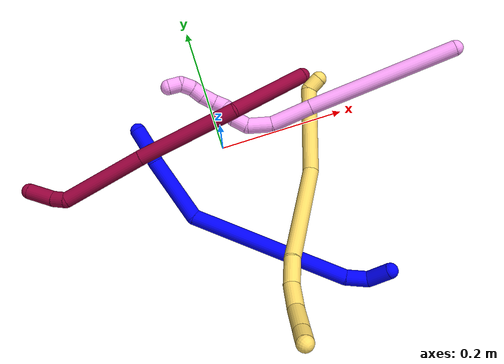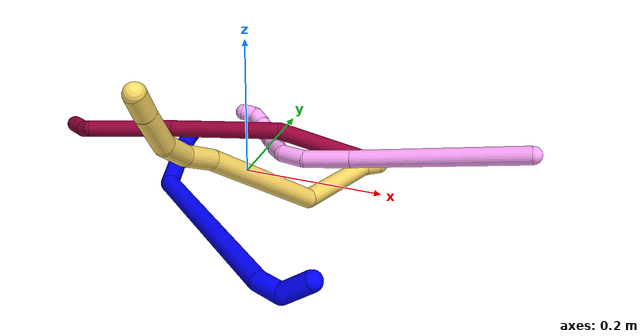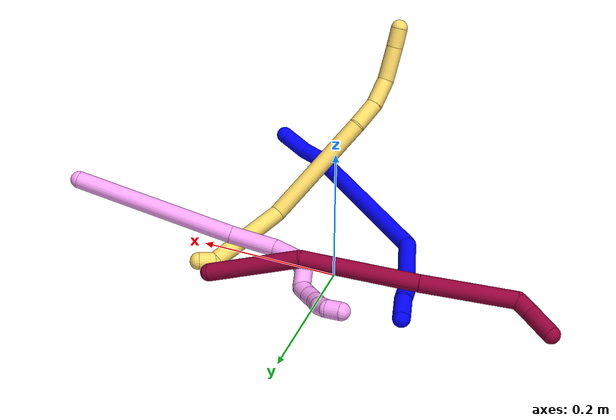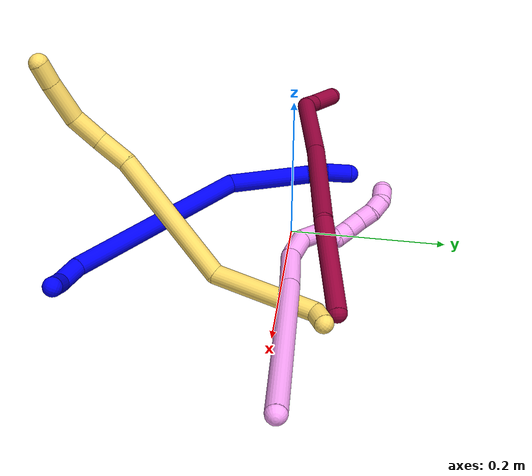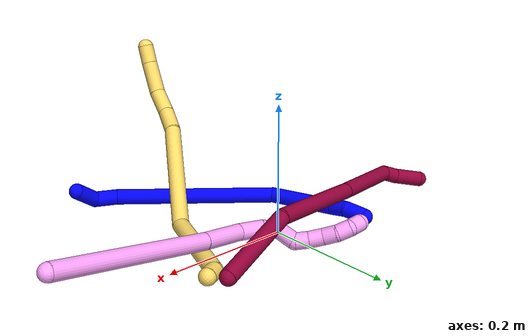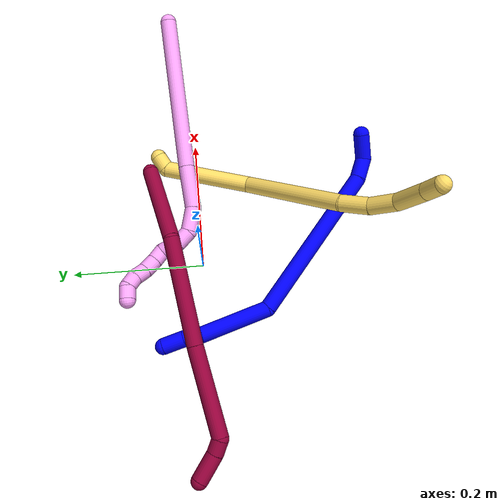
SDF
<sdf version="1.7">
 <world name="default">
  <model name="1">
   <static>0</static>
   <link name="1">
    <collision name="collision-cylinder-e_1_1_4">
     <pose>-0.018962 -0.005473 -0.005188 2.32944 -1.19227 -2.01189</pose>
     <geometry><cylinder><radius>0.0125</radius><length>0.040814</length></cylinder></geometry>
     <surface>
      <friction><ode><mu>1.16</mu><mu2>1.16</mu2><slip1>0</slip1><slip2>0</slip2></ode></friction>
      <contact><ode><kp>1e+06</kp><kd>1</kd><max_vel>0</max_vel><min_depth>0.001</min_depth></ode></contact>
     </surface>
    </collision>
    <visual name="visual-cylinder-e_1_1_4">
     <pose>-0.018962 -0.005473 -0.005188 2.32944 -1.19227 -2.01189</pose>
     <geometry><cylinder><radius>0.0125</radius><length>0.040814</length></cylinder></geometry>
     <material><ambient>0 0 1 1</ambient></material>
    </visual>
    <collision name="collision-cylinder-e_2_4_5">
     <pose>-0.052261 -0.00319 -0.017842 -2.33709 -0.926681 1.7308</pose>
     <geometry><cylinder><radius>0.0125</radius><length>0.035857</length></cylinder></geometry>
     <surface>
      <friction><ode><mu>1.16</mu><mu2>1.16</mu2><slip1>0</slip1><slip2>0</slip2></ode></friction>
      <contact><ode><kp>1e+06</kp><kd>1</kd><max_vel>0</max_vel><min_depth>0.001</min_depth></ode></contact>
     </surface>
    </collision>
    <visual name="visual-cylinder-e_2_4_5">
     <pose>-0.052261 -0.00319 -0.017842 -2.33709 -0.926681 1.7308</pose>
     <geometry><cylinder><radius>0.0125</radius><length>0.035857</length></cylinder></geometry>
     <material><ambient>0 0 1 1</ambient></material>
    </visual>
    <collision name="collision-cylinder-e_3_5_6">
     <pose>-0.14315 0.068947 -0.10562 -2.46586 -0.63947 1.51148</pose>
     <geometry><cylinder><radius>0.0125</radius><length>0.256555</length></cylinder></geometry>
     <surface>
      <friction><ode><mu>1.16</mu><mu2>1.16</mu2><slip1>0</slip1><slip2>0</slip2></ode></friction>
      <contact><ode><kp>1e+06</kp><kd>1</kd><max_vel>0</max_vel><min_depth>0.001</min_depth></ode></contact>
     </surface>
    </collision>
    <visual name="visual-cylinder-e_3_5_6">
     <pose>-0.14315 0.068947 -0.10562 -2.46586 -0.63947 1.51148</pose>
     <geometry><cylinder><radius>0.0125</radius><length>0.256555</length></cylinder></geometry>
     <material><ambient>0 0 1 1</ambient></material>
    </visual>
    <collision name="collision-cylinder-e_4_6_7">
     <pose>-0.224131 0.160175 -0.232559 -2.61917 -0.082138 0.305051</pose>
     <geometry><cylinder><radius>0.0125</radius><length>0.107972</length></cylinder></geometry>
     <surface>
      <friction><ode><mu>1.16</mu><mu2>1.16</mu2><slip1>0</slip1><slip2>0</slip2></ode></friction>
      <contact><ode><kp>1e+06</kp><kd>1</kd><max_vel>0</max_vel><min_depth>0.001</min_depth></ode></contact>
     </surface>
    </collision>
    <visual name="visual-cylinder-e_4_6_7">
     <pose>-0.224131 0.160175 -0.232559 -2.61917 -0.082138 0.305051</pose>
     <geometry><cylinder><radius>0.0125</radius><length>0.107972</length></cylinder></geometry>
     <material><ambient>0 0 1 1</ambient></material>
    </visual>
    <collision name="collision-cylinder-e_5_7_8">
     <pose>-0.227278 0.19406 -0.289602 -2.54738 0.101649 -0.32928</pose>
     <geometry><cylinder><radius>0.0125</radius><length>0.025273</length></cylinder></geometry>
     <surface>
      <friction><ode><mu>1.16</mu><mu2>1.16</mu2><slip1>0</slip1><slip2>0</slip2></ode></friction>
      <contact><ode><kp>1e+06</kp><kd>1</kd><max_vel>0</max_vel><min_depth>0.001</min_depth></ode></contact>
     </surface>
    </collision>
    <visual name="visual-cylinder-e_5_7_8">
     <pose>-0.227278 0.19406 -0.289602 -2.54738 0.101649 -0.32928</pose>
     <geometry><cylinder><radius>0.0125</radius><length>0.025273</length></cylinder></geometry>
     <material><ambient>0 0 1 1</ambient></material>
    </visual>
    <collision name="collision-cylinder-e_6_8_2">
     <pose>-0.227291 0.206618 -0.315796 -2.80505 -0.077322 0.44775</pose>
     <geometry><cylinder><radius>0.0125</radius><length>0.033529</length></cylinder></geometry>
     <surface>
      <friction><ode><mu>1.16</mu><mu2>1.16</mu2><slip1>0</slip1><slip2>0</slip2></ode></friction>
      <contact><ode><kp>1e+06</kp><kd>1</kd><max_vel>0</max_vel><min_depth>0.001</min_depth></ode></contact>
     </surface>
    </collision>
    <visual name="visual-cylinder-e_6_8_2">
     <pose>-0.227291 0.206618 -0.315796 -2.80505 -0.077322 0.44775</pose>
     <geometry><cylinder><radius>0.0125</radius><length>0.033529</length></cylinder></geometry>
     <material><ambient>0 0 1 1</ambient></material>
    </visual>
    <collision name="collision-sphere-2">
     <pose>-0.228586 0.212138 -0.331573 0 -0 0</pose>
     <geometry><sphere><radius>0.0125</radius></sphere></geometry>
     <surface>
      <friction><ode><mu>1.16</mu><mu2>1.16</mu2><slip1>0</slip1><slip2>0</slip2></ode></friction>
      <contact><ode><kp>1e+06</kp><kd>1</kd><max_vel>0</max_vel><min_depth>0.001</min_depth></ode></contact>
     </surface>
    </collision>
    <visual name="visual-sphere-2">
     <pose>-0.228586 0.212138 -0.331573 0 -0 0</pose>
     <geometry><sphere><radius>0.0125</radius></sphere></geometry>
     <material><ambient>0 0 1 1</ambient></material>
    </visual>
    <collision name="collision-sphere-4">
     <pose>-0.037925 -0.010947 -0.010376 0 -0 0</pose>
     <geometry><sphere><radius>0.0125</radius></sphere></geometry>
     <surface>
      <friction><ode><mu>1.16</mu><mu2>1.16</mu2><slip1>0</slip1><slip2>0</slip2></ode></friction>
      <contact><ode><kp>1e+06</kp><kd>1</kd><max_vel>0</max_vel><min_depth>0.001</min_depth></ode></contact>
     </surface>
    </collision>
    <visual name="visual-sphere-4">
     <pose>-0.037925 -0.010947 -0.010376 0 -0 0</pose>
     <geometry><sphere><radius>0.0125</radius></sphere></geometry>
     <material><ambient>0 0 1 1</ambient></material>
    </visual>
    <collision name="collision-sphere-1">
     <geometry><sphere><radius>0.0125</radius></sphere></geometry>
     <surface>
      <friction><ode><mu>1.16</mu><mu2>1.16</mu2><slip1>0</slip1><slip2>0</slip2></ode></friction>
      <contact><ode><kp>1e+06</kp><kd>1</kd><max_vel>0</max_vel><min_depth>0.001</min_depth></ode></contact>
     </surface>
    </collision>
    <visual name="visual-sphere-1">
     <geometry><sphere><radius>0.0125</radius></sphere></geometry>
     <material><ambient>0 0 1 1</ambient></material>
    </visual>
    <collision name="collision-sphere-8">
     <pose>-0.225996 0.201098 -0.300019 0 -0 0</pose>
     <geometry><sphere><radius>0.0125</radius></sphere></geometry>
     <surface>
      <friction><ode><mu>1.16</mu><mu2>1.16</mu2><slip1>0</slip1><slip2>0</slip2></ode></friction>
      <contact><ode><kp>1e+06</kp><kd>1</kd><max_vel>0</max_vel><min_depth>0.001</min_depth></ode></contact>
     </surface>
    </collision>
    <visual name="visual-sphere-8">
     <pose>-0.225996 0.201098 -0.300019 0 -0 0</pose>
     <geometry><sphere><radius>0.0125</radius></sphere></geometry>
     <material><ambient>0 0 1 1</ambient></material>
    </visual>
    <collision name="collision-sphere-5">
     <pose>-0.066597 0.004567 -0.025308 0 -0 0</pose>
     <geometry><sphere><radius>0.0125</radius></sphere></geometry>
     <surface>
      <friction><ode><mu>1.16</mu><mu2>1.16</mu2><slip1>0</slip1><slip2>0</slip2></ode></friction>
      <contact><ode><kp>1e+06</kp><kd>1</kd><max_vel>0</max_vel><min_depth>0.001</min_depth></ode></contact>
     </surface>
    </collision>
    <visual name="visual-sphere-5">
     <pose>-0.066597 0.004567 -0.025308 0 -0 0</pose>
     <geometry><sphere><radius>0.0125</radius></sphere></geometry>
     <material><ambient>0 0 1 1</ambient></material>
    </visual>
    <collision name="collision-sphere-6">
     <pose>-0.219702 0.133328 -0.185932 0 -0 0</pose>
     <geometry><sphere><radius>0.0125</radius></sphere></geometry>
     <surface>
      <friction><ode><mu>1.16</mu><mu2>1.16</mu2><slip1>0</slip1><slip2>0</slip2></ode></friction>
      <contact><ode><kp>1e+06</kp><kd>1</kd><max_vel>0</max_vel><min_depth>0.001</min_depth></ode></contact>
     </surface>
    </collision>
    <visual name="visual-sphere-6">
     <pose>-0.219702 0.133328 -0.185932 0 -0 0</pose>
     <geometry><sphere><radius>0.0125</radius></sphere></geometry>
     <material><ambient>0 0 1 1</ambient></material>
    </visual>
    <collision name="collision-sphere-7">
     <pose>-0.22856 0.187022 -0.279186 0 -0 0</pose>
     <geometry><sphere><radius>0.0125</radius></sphere></geometry>
     <surface>
      <friction><ode><mu>1.16</mu><mu2>1.16</mu2><slip1>0</slip1><slip2>0</slip2></ode></friction>
      <contact><ode><kp>1e+06</kp><kd>1</kd><max_vel>0</max_vel><min_depth>0.001</min_depth></ode></contact>
     </surface>
    </collision>
    <visual name="visual-sphere-7">
     <pose>-0.22856 0.187022 -0.279186 0 -0 0</pose>
     <geometry><sphere><radius>0.0125</radius></sphere></geometry>
     <material><ambient>0 0 1 1</ambient></material>
    </visual>
    <inertial>
     <pose>-0.153876 0.092955 -0.141932 0 -0 0</pose>
     <mass>0.5</mass>
     <inertia>
      <ixx>0.001328</ixx>
      <ixy>0</ixy>
      <ixz>0</ixz>
      <iyy>0.001565</iyy>
      <iyz>0</iyz>
      <izz>7.1e-05</izz>
     </inertia>
    </inertial>
   </link>
   <pose>0.187484 -0.265949 0.037028 1.08892 -0.259809 0.220103</pose>
  </model>
  <model name="4">
   <static>0</static>
   <link name="4">
    <collision name="collision-cylinder-e_1_1_4">
     <pose>-0.008707 -0.003258 -0.119436 3.11432 -0.072746 -2.42449</pose>
     <geometry><cylinder><radius>0.0125</radius><length>0.239595</length></cylinder></geometry>
     <surface>
      <friction><ode><mu>1.16</mu><mu2>1.16</mu2><slip1>0</slip1><slip2>0</slip2></ode></friction>
      <contact><ode><kp>1e+06</kp><kd>1</kd><max_vel>0</max_vel><min_depth>0.001</min_depth></ode></contact>
     </surface>
    </collision>
    <visual name="visual-cylinder-e_1_1_4">
     <pose>-0.008707 -0.003258 -0.119436 3.11432 -0.072746 -2.42449</pose>
     <geometry><cylinder><radius>0.0125</radius><length>0.239595</length></cylinder></geometry>
     <material><ambient>1 0.65098 0.996078 1</ambient></material>
    </visual>
    <collision name="collision-cylinder-e_2_4_5">
     <pose>-0.020281 -0.009129 -0.271951 3.06278 -0.086192 -1.66023</pose>
     <geometry><cylinder><radius>0.0125</radius><length>0.066612</length></cylinder></geometry>
     <surface>
      <friction><ode><mu>1.16</mu><mu2>1.16</mu2><slip1>0</slip1><slip2>0</slip2></ode></friction>
      <contact><ode><kp>1e+06</kp><kd>1</kd><max_vel>0</max_vel><min_depth>0.001</min_depth></ode></contact>
     </surface>
    </collision>
    <visual name="visual-cylinder-e_2_4_5">
     <pose>-0.020281 -0.009129 -0.271951 3.06278 -0.086192 -1.66023</pose>
     <geometry><cylinder><radius>0.0125</radius><length>0.066612</length></cylinder></geometry>
     <material><ambient>1 0.65098 0.996078 1</ambient></material>
    </visual>
    <collision name="collision-cylinder-e_3_5_6">
     <pose>-0.029502 -0.008788 -0.322919 -2.97798 -0.337044 2.24346</pose>
     <geometry><cylinder><radius>0.0125</radius><length>0.038423</length></cylinder></geometry>
     <surface>
      <friction><ode><mu>1.16</mu><mu2>1.16</mu2><slip1>0</slip1><slip2>0</slip2></ode></friction>
      <contact><ode><kp>1e+06</kp><kd>1</kd><max_vel>0</max_vel><min_depth>0.001</min_depth></ode></contact>
     </surface>
    </collision>
    <visual name="visual-cylinder-e_3_5_6">
     <pose>-0.029502 -0.008788 -0.322919 -2.97798 -0.337044 2.24346</pose>
     <geometry><cylinder><radius>0.0125</radius><length>0.038423</length></cylinder></geometry>
     <material><ambient>1 0.65098 0.996078 1</ambient></material>
    </visual>
    <collision name="collision-cylinder-e_4_6_7">
     <pose>-0.041818 0.001667 -0.348635 -2.37742 -0.502833 1.13748</pose>
     <geometry><cylinder><radius>0.0125</radius><length>0.024748</length></cylinder></geometry>
     <surface>
      <friction><ode><mu>1.16</mu><mu2>1.16</mu2><slip1>0</slip1><slip2>0</slip2></ode></friction>
      <contact><ode><kp>1e+06</kp><kd>1</kd><max_vel>0</max_vel><min_depth>0.001</min_depth></ode></contact>
     </surface>
    </collision>
    <visual name="visual-cylinder-e_4_6_7">
     <pose>-0.041818 0.001667 -0.348635 -2.37742 -0.502833 1.13748</pose>
     <geometry><cylinder><radius>0.0125</radius><length>0.024748</length></cylinder></geometry>
     <material><ambient>1 0.65098 0.996078 1</ambient></material>
    </visual>
    <collision name="collision-cylinder-e_5_7_8">
     <pose>-0.051028 0.022191 -0.360177 -1.84865 -0.23532 0.310749</pose>
     <geometry><cylinder><radius>0.0125</radius><length>0.027849</length></cylinder></geometry>
     <surface>
      <friction><ode><mu>1.16</mu><mu2>1.16</mu2><slip1>0</slip1><slip2>0</slip2></ode></friction>
      <contact><ode><kp>1e+06</kp><kd>1</kd><max_vel>0</max_vel><min_depth>0.001</min_depth></ode></contact>
     </surface>
    </collision>
    <visual name="visual-cylinder-e_5_7_8">
     <pose>-0.051028 0.022191 -0.360177 -1.84865 -0.23532 0.310749</pose>
     <geometry><cylinder><radius>0.0125</radius><length>0.027849</length></cylinder></geometry>
     <material><ambient>1 0.65098 0.996078 1</ambient></material>
    </visual>
    <collision name="collision-cylinder-e_6_8_9">
     <pose>-0.060491 0.039353 -0.37065 -2.59197 -0.66509 1.77232</pose>
     <geometry><cylinder><radius>0.0125</radius><length>0.020147</length></cylinder></geometry>
     <surface>
      <friction><ode><mu>1.16</mu><mu2>1.16</mu2><slip1>0</slip1><slip2>0</slip2></ode></friction>
      <contact><ode><kp>1e+06</kp><kd>1</kd><max_vel>0</max_vel><min_depth>0.001</min_depth></ode></contact>
     </surface>
    </collision>
    <visual name="visual-cylinder-e_6_8_9">
     <pose>-0.060491 0.039353 -0.37065 -2.59197 -0.66509 1.77232</pose>
     <geometry><cylinder><radius>0.0125</radius><length>0.020147</length></cylinder></geometry>
     <material><ambient>1 0.65098 0.996078 1</ambient></material>
    </visual>
    <collision name="collision-cylinder-e_7_9_10">
     <pose>-0.074787 0.047621 -0.383729 -2.56304 -0.819406 1.93996</pose>
     <geometry><cylinder><radius>0.0125</radius><length>0.022113</length></cylinder></geometry>
     <surface>
      <friction><ode><mu>1.16</mu><mu2>1.16</mu2><slip1>0</slip1><slip2>0</slip2></ode></friction>
      <contact><ode><kp>1e+06</kp><kd>1</kd><max_vel>0</max_vel><min_depth>0.001</min_depth></ode></contact>
     </surface>
    </collision>
    <visual name="visual-cylinder-e_7_9_10">
     <pose>-0.074787 0.047621 -0.383729 -2.56304 -0.819406 1.93996</pose>
     <geometry><cylinder><radius>0.0125</radius><length>0.022113</length></cylinder></geometry>
     <material><ambient>1 0.65098 0.996078 1</ambient></material>
    </visual>
    <collision name="collision-cylinder-e_8_10_11">
     <pose>-0.091175 0.055822 -0.394151 -2.35976 -0.962823 1.80572</pose>
     <geometry><cylinder><radius>0.0125</radius><length>0.020244</length></cylinder></geometry>
     <surface>
      <friction><ode><mu>1.16</mu><mu2>1.16</mu2><slip1>0</slip1><slip2>0</slip2></ode></friction>
      <contact><ode><kp>1e+06</kp><kd>1</kd><max_vel>0</max_vel><min_depth>0.001</min_depth></ode></contact>
     </surface>
    </collision>
    <visual name="visual-cylinder-e_8_10_11">
     <pose>-0.091175 0.055822 -0.394151 -2.35976 -0.962823 1.80572</pose>
     <geometry><cylinder><radius>0.0125</radius><length>0.020244</length></cylinder></geometry>
     <material><ambient>1 0.65098 0.996078 1</ambient></material>
    </visual>
    <collision name="collision-cylinder-e_9_11_12">
     <pose>-0.107172 0.061618 -0.404543 -2.87418 -0.867424 2.57627</pose>
     <geometry><cylinder><radius>0.0125</radius><length>0.020162</length></cylinder></geometry>
     <surface>
      <friction><ode><mu>1.16</mu><mu2>1.16</mu2><slip1>0</slip1><slip2>0</slip2></ode></friction>
      <contact><ode><kp>1e+06</kp><kd>1</kd><max_vel>0</max_vel><min_depth>0.001</min_depth></ode></contact>
     </surface>
    </collision>
    <visual name="visual-cylinder-e_9_11_12">
     <pose>-0.107172 0.061618 -0.404543 -2.87418 -0.867424 2.57627</pose>
     <geometry><cylinder><radius>0.0125</radius><length>0.020162</length></cylinder></geometry>
     <material><ambient>1 0.65098 0.996078 1</ambient></material>
    </visual>
    <collision name="collision-cylinder-e_10_12_2">
     <pose>-0.11818 0.062199 -0.420252 3.02091 -0.336534 -2.4582</pose>
     <geometry><cylinder><radius>0.0125</radius><length>0.020107</length></cylinder></geometry>
     <surface>
      <friction><ode><mu>1.16</mu><mu2>1.16</mu2><slip1>0</slip1><slip2>0</slip2></ode></friction>
      <contact><ode><kp>1e+06</kp><kd>1</kd><max_vel>0</max_vel><min_depth>0.001</min_depth></ode></contact>
     </surface>
    </collision>
    <visual name="visual-cylinder-e_10_12_2">
     <pose>-0.11818 0.062199 -0.420252 3.02091 -0.336534 -2.4582</pose>
     <geometry><cylinder><radius>0.0125</radius><length>0.020107</length></cylinder></geometry>
     <material><ambient>1 0.65098 0.996078 1</ambient></material>
    </visual>
    <collision name="collision-sphere-2">
     <pose>-0.1215 0.061056 -0.429672 0 -0 0</pose>
     <geometry><sphere><radius>0.0125</radius></sphere></geometry>
     <surface>
      <friction><ode><mu>1.16</mu><mu2>1.16</mu2><slip1>0</slip1><slip2>0</slip2></ode></friction>
      <contact><ode><kp>1e+06</kp><kd>1</kd><max_vel>0</max_vel><min_depth>0.001</min_depth></ode></contact>
     </surface>
    </collision>
    <visual name="visual-sphere-2">
     <pose>-0.1215 0.061056 -0.429672 0 -0 0</pose>
     <geometry><sphere><radius>0.0125</radius></sphere></geometry>
     <material><ambient>1 0.65098 0.996078 1</ambient></material>
    </visual>
    <collision name="collision-sphere-12">
     <pose>-0.11486 0.063341 -0.410831 0 -0 0</pose>
     <geometry><sphere><radius>0.0125</radius></sphere></geometry>
     <surface>
      <friction><ode><mu>1.16</mu><mu2>1.16</mu2><slip1>0</slip1><slip2>0</slip2></ode></friction>
      <contact><ode><kp>1e+06</kp><kd>1</kd><max_vel>0</max_vel><min_depth>0.001</min_depth></ode></contact>
     </surface>
    </collision>
    <visual name="visual-sphere-12">
     <pose>-0.11486 0.063341 -0.410831 0 -0 0</pose>
     <geometry><sphere><radius>0.0125</radius></sphere></geometry>
     <material><ambient>1 0.65098 0.996078 1</ambient></material>
    </visual>
    <collision name="collision-sphere-11">
     <pose>-0.099483 0.059895 -0.398254 0 -0 0</pose>
     <geometry><sphere><radius>0.0125</radius></sphere></geometry>
     <surface>
      <friction><ode><mu>1.16</mu><mu2>1.16</mu2><slip1>0</slip1><slip2>0</slip2></ode></friction>
      <contact><ode><kp>1e+06</kp><kd>1</kd><max_vel>0</max_vel><min_depth>0.001</min_depth></ode></contact>
     </surface>
    </collision>
    <visual name="visual-sphere-11">
     <pose>-0.099483 0.059895 -0.398254 0 -0 0</pose>
     <geometry><sphere><radius>0.0125</radius></sphere></geometry>
     <material><ambient>1 0.65098 0.996078 1</ambient></material>
    </visual>
    <collision name="collision-sphere-10">
     <pose>-0.082867 0.051748 -0.390048 0 -0 0</pose>
     <geometry><sphere><radius>0.0125</radius></sphere></geometry>
     <surface>
      <friction><ode><mu>1.16</mu><mu2>1.16</mu2><slip1>0</slip1><slip2>0</slip2></ode></friction>
      <contact><ode><kp>1e+06</kp><kd>1</kd><max_vel>0</max_vel><min_depth>0.001</min_depth></ode></contact>
     </surface>
    </collision>
    <visual name="visual-sphere-10">
     <pose>-0.082867 0.051748 -0.390048 0 -0 0</pose>
     <geometry><sphere><radius>0.0125</radius></sphere></geometry>
     <material><ambient>1 0.65098 0.996078 1</ambient></material>
    </visual>
    <collision name="collision-sphere-9">
     <pose>-0.066708 0.043493 -0.377409 0 -0 0</pose>
     <geometry><sphere><radius>0.0125</radius></sphere></geometry>
     <surface>
      <friction><ode><mu>1.16</mu><mu2>1.16</mu2><slip1>0</slip1><slip2>0</slip2></ode></friction>
      <contact><ode><kp>1e+06</kp><kd>1</kd><max_vel>0</max_vel><min_depth>0.001</min_depth></ode></contact>
     </surface>
    </collision>
    <visual name="visual-sphere-9">
     <pose>-0.066708 0.043493 -0.377409 0 -0 0</pose>
     <geometry><sphere><radius>0.0125</radius></sphere></geometry>
     <material><ambient>1 0.65098 0.996078 1</ambient></material>
    </visual>
    <collision name="collision-sphere-4">
     <pose>-0.017414 -0.006516 -0.238872 0 -0 0</pose>
     <geometry><sphere><radius>0.0125</radius></sphere></geometry>
     <surface>
      <friction><ode><mu>1.16</mu><mu2>1.16</mu2><slip1>0</slip1><slip2>0</slip2></ode></friction>
      <contact><ode><kp>1e+06</kp><kd>1</kd><max_vel>0</max_vel><min_depth>0.001</min_depth></ode></contact>
     </surface>
    </collision>
    <visual name="visual-sphere-4">
     <pose>-0.017414 -0.006516 -0.238872 0 -0 0</pose>
     <geometry><sphere><radius>0.0125</radius></sphere></geometry>
     <material><ambient>1 0.65098 0.996078 1</ambient></material>
    </visual>
    <collision name="collision-sphere-1">
     <geometry><sphere><radius>0.0125</radius></sphere></geometry>
     <surface>
      <friction><ode><mu>1.16</mu><mu2>1.16</mu2><slip1>0</slip1><slip2>0</slip2></ode></friction>
      <contact><ode><kp>1e+06</kp><kd>1</kd><max_vel>0</max_vel><min_depth>0.001</min_depth></ode></contact>
     </surface>
    </collision>
    <visual name="visual-sphere-1">
     <geometry><sphere><radius>0.0125</radius></sphere></geometry>
     <material><ambient>1 0.65098 0.996078 1</ambient></material>
    </visual>
    <collision name="collision-sphere-8">
     <pose>-0.054274 0.035212 -0.363891 0 -0 0</pose>
     <geometry><sphere><radius>0.0125</radius></sphere></geometry>
     <surface>
      <friction><ode><mu>1.16</mu><mu2>1.16</mu2><slip1>0</slip1><slip2>0</slip2></ode></friction>
      <contact><ode><kp>1e+06</kp><kd>1</kd><max_vel>0</max_vel><min_depth>0.001</min_depth></ode></contact>
     </surface>
    </collision>
    <visual name="visual-sphere-8">
     <pose>-0.054274 0.035212 -0.363891 0 -0 0</pose>
     <geometry><sphere><radius>0.0125</radius></sphere></geometry>
     <material><ambient>1 0.65098 0.996078 1</ambient></material>
    </visual>
    <collision name="collision-sphere-5">
     <pose>-0.023149 -0.011741 -0.305031 0 -0 0</pose>
     <geometry><sphere><radius>0.0125</radius></sphere></geometry>
     <surface>
      <friction><ode><mu>1.16</mu><mu2>1.16</mu2><slip1>0</slip1><slip2>0</slip2></ode></friction>
      <contact><ode><kp>1e+06</kp><kd>1</kd><max_vel>0</max_vel><min_depth>0.001</min_depth></ode></contact>
     </surface>
    </collision>
    <visual name="visual-sphere-5">
     <pose>-0.023149 -0.011741 -0.305031 0 -0 0</pose>
     <geometry><sphere><radius>0.0125</radius></sphere></geometry>
     <material><ambient>1 0.65098 0.996078 1</ambient></material>
    </visual>
    <collision name="collision-sphere-6">
     <pose>-0.035855 -0.005835 -0.340808 0 -0 0</pose>
     <geometry><sphere><radius>0.0125</radius></sphere></geometry>
     <surface>
      <friction><ode><mu>1.16</mu><mu2>1.16</mu2><slip1>0</slip1><slip2>0</slip2></ode></friction>
      <contact><ode><kp>1e+06</kp><kd>1</kd><max_vel>0</max_vel><min_depth>0.001</min_depth></ode></contact>
     </surface>
    </collision>
    <visual name="visual-sphere-6">
     <pose>-0.035855 -0.005835 -0.340808 0 -0 0</pose>
     <geometry><sphere><radius>0.0125</radius></sphere></geometry>
     <material><ambient>1 0.65098 0.996078 1</ambient></material>
    </visual>
    <collision name="collision-sphere-7">
     <pose>-0.047781 0.009169 -0.356463 0 -0 0</pose>
     <geometry><sphere><radius>0.0125</radius></sphere></geometry>
     <surface>
      <friction><ode><mu>1.16</mu><mu2>1.16</mu2><slip1>0</slip1><slip2>0</slip2></ode></friction>
      <contact><ode><kp>1e+06</kp><kd>1</kd><max_vel>0</max_vel><min_depth>0.001</min_depth></ode></contact>
     </surface>
    </collision>
    <visual name="visual-sphere-7">
     <pose>-0.047781 0.009169 -0.356463 0 -0 0</pose>
     <geometry><sphere><radius>0.0125</radius></sphere></geometry>
     <material><ambient>1 0.65098 0.996078 1</ambient></material>
    </visual>
    <inertial>
     <pose>-0.032564 0.008804 -0.236672 0 -0 0</pose>
     <mass>0.5</mass>
     <inertia>
      <ixx>-0.001658</ixx>
      <ixy>0</ixy>
      <ixz>0</ixz>
      <iyy>0.000114</iyy>
      <iyz>0</iyz>
      <izz>8.8e-05</izz>
     </inertia>
    </inertial>
   </link>
   <pose>0.386157 0.028313 0.081736 -1.13656 0.931066 -1.13947</pose>
  </model>
  <model name="5">
   <static>0</static>
   <link name="5">
    <collision name="collision-cylinder-e_1_1_4">
     <pose>-0.004817 -0.01052 -0.001458 1.70856 -0.425799 -0.486596</pose>
     <geometry><cylinder><radius>0.0125</radius><length>0.023323</length></cylinder></geometry>
     <surface>
      <friction><ode><mu>1.16</mu><mu2>1.16</mu2><slip1>0</slip1><slip2>0</slip2></ode></friction>
      <contact><ode><kp>1e+06</kp><kd>1</kd><max_vel>0</max_vel><min_depth>0.001</min_depth></ode></contact>
     </surface>
    </collision>
    <visual name="visual-cylinder-e_1_1_4">
     <pose>-0.004817 -0.01052 -0.001458 1.70856 -0.425799 -0.486596</pose>
     <geometry><cylinder><radius>0.0125</radius><length>0.023323</length></cylinder></geometry>
     <material><ambient>1 0.858824 0.4 1</ambient></material>
    </visual>
    <collision name="collision-cylinder-e_2_4_5">
     <pose>-0.006885 -0.08066 0.02854 1.08529 0.040748 0.024574</pose>
     <geometry><cylinder><radius>0.0125</radius><length>0.134934</length></cylinder></geometry>
     <surface>
      <friction><ode><mu>1.16</mu><mu2>1.16</mu2><slip1>0</slip1><slip2>0</slip2></ode></friction>
      <contact><ode><kp>1e+06</kp><kd>1</kd><max_vel>0</max_vel><min_depth>0.001</min_depth></ode></contact>
     </surface>
    </collision>
    <visual name="visual-cylinder-e_2_4_5">
     <pose>-0.006885 -0.08066 0.02854 1.08529 0.040748 0.024574</pose>
     <geometry><cylinder><radius>0.0125</radius><length>0.134934</length></cylinder></geometry>
     <material><ambient>1 0.858824 0.4 1</ambient></material>
    </visual>
    <collision name="collision-cylinder-e_3_5_6">
     <pose>-0.044315 -0.194884 0.116404 0.769147 -0.473034 -0.194485</pose>
     <geometry><cylinder><radius>0.0125</radius><length>0.17638</length></cylinder></geometry>
     <surface>
      <friction><ode><mu>1.16</mu><mu2>1.16</mu2><slip1>0</slip1><slip2>0</slip2></ode></friction>
      <contact><ode><kp>1e+06</kp><kd>1</kd><max_vel>0</max_vel><min_depth>0.001</min_depth></ode></contact>
     </surface>
    </collision>
    <visual name="visual-cylinder-e_3_5_6">
     <pose>-0.044315 -0.194884 0.116404 0.769147 -0.473034 -0.194485</pose>
     <geometry><cylinder><radius>0.0125</radius><length>0.17638</length></cylinder></geometry>
     <material><ambient>1 0.858824 0.4 1</ambient></material>
    </visual>
    <collision name="collision-cylinder-e_4_6_7">
     <pose>-0.089975 -0.26452 0.187175 0.808182 -0.257734 -0.110714</pose>
     <geometry><cylinder><radius>0.0125</radius><length>0.043007</length></cylinder></geometry>
     <surface>
      <friction><ode><mu>1.16</mu><mu2>1.16</mu2><slip1>0</slip1><slip2>0</slip2></ode></friction>
      <contact><ode><kp>1e+06</kp><kd>1</kd><max_vel>0</max_vel><min_depth>0.001</min_depth></ode></contact>
     </surface>
    </collision>
    <visual name="visual-cylinder-e_4_6_7">
     <pose>-0.089975 -0.26452 0.187175 0.808182 -0.257734 -0.110714</pose>
     <geometry><cylinder><radius>0.0125</radius><length>0.043007</length></cylinder></geometry>
     <material><ambient>1 0.858824 0.4 1</ambient></material>
    </visual>
    <collision name="collision-cylinder-e_5_7_8">
     <pose>-0.100647 -0.28979 0.2189 0.532747 -0.252099 -0.069126</pose>
     <geometry><cylinder><radius>0.0125</radius><length>0.041621</length></cylinder></geometry>
     <surface>
      <friction><ode><mu>1.16</mu><mu2>1.16</mu2><slip1>0</slip1><slip2>0</slip2></ode></friction>
      <contact><ode><kp>1e+06</kp><kd>1</kd><max_vel>0</max_vel><min_depth>0.001</min_depth></ode></contact>
     </surface>
    </collision>
    <visual name="visual-cylinder-e_5_7_8">
     <pose>-0.100647 -0.28979 0.2189 0.532747 -0.252099 -0.069126</pose>
     <geometry><cylinder><radius>0.0125</radius><length>0.041621</length></cylinder></geometry>
     <material><ambient>1 0.858824 0.4 1</ambient></material>
    </visual>
    <collision name="collision-cylinder-e_6_8_9">
     <pose>-0.116979 -0.304563 0.259148 0.195674 -0.445492 -0.044456</pose>
     <geometry><cylinder><radius>0.0125</radius><length>0.051714</length></cylinder></geometry>
     <surface>
      <friction><ode><mu>1.16</mu><mu2>1.16</mu2><slip1>0</slip1><slip2>0</slip2></ode></friction>
      <contact><ode><kp>1e+06</kp><kd>1</kd><max_vel>0</max_vel><min_depth>0.001</min_depth></ode></contact>
     </surface>
    </collision>
    <visual name="visual-cylinder-e_6_8_9">
     <pose>-0.116979 -0.304563 0.259148 0.195674 -0.445492 -0.044456</pose>
     <geometry><cylinder><radius>0.0125</radius><length>0.051714</length></cylinder></geometry>
     <material><ambient>1 0.858824 0.4 1</ambient></material>
    </visual>
    <collision name="collision-cylinder-e_7_9_2">
     <pose>-0.134957 -0.310707 0.294734 0.125911 -0.490497 -0.031553</pose>
     <geometry><cylinder><radius>0.0125</radius><length>0.029021</length></cylinder></geometry>
     <surface>
      <friction><ode><mu>1.16</mu><mu2>1.16</mu2><slip1>0</slip1><slip2>0</slip2></ode></friction>
      <contact><ode><kp>1e+06</kp><kd>1</kd><max_vel>0</max_vel><min_depth>0.001</min_depth></ode></contact>
     </surface>
    </collision>
    <visual name="visual-cylinder-e_7_9_2">
     <pose>-0.134957 -0.310707 0.294734 0.125911 -0.490497 -0.031553</pose>
     <geometry><cylinder><radius>0.0125</radius><length>0.029021</length></cylinder></geometry>
     <material><ambient>1 0.858824 0.4 1</ambient></material>
    </visual>
    <collision name="collision-sphere-2">
     <pose>-0.141792 -0.312314 0.307433 0 -0 0</pose>
     <geometry><sphere><radius>0.0125</radius></sphere></geometry>
     <surface>
      <friction><ode><mu>1.16</mu><mu2>1.16</mu2><slip1>0</slip1><slip2>0</slip2></ode></friction>
      <contact><ode><kp>1e+06</kp><kd>1</kd><max_vel>0</max_vel><min_depth>0.001</min_depth></ode></contact>
     </surface>
    </collision>
    <visual name="visual-sphere-2">
     <pose>-0.141792 -0.312314 0.307433 0 -0 0</pose>
     <geometry><sphere><radius>0.0125</radius></sphere></geometry>
     <material><ambient>1 0.858824 0.4 1</ambient></material>
    </visual>
    <collision name="collision-sphere-9">
     <pose>-0.128121 -0.309099 0.282036 0 -0 0</pose>
     <geometry><sphere><radius>0.0125</radius></sphere></geometry>
     <surface>
      <friction><ode><mu>1.16</mu><mu2>1.16</mu2><slip1>0</slip1><slip2>0</slip2></ode></friction>
      <contact><ode><kp>1e+06</kp><kd>1</kd><max_vel>0</max_vel><min_depth>0.001</min_depth></ode></contact>
     </surface>
    </collision>
    <visual name="visual-sphere-9">
     <pose>-0.128121 -0.309099 0.282036 0 -0 0</pose>
     <geometry><sphere><radius>0.0125</radius></sphere></geometry>
     <material><ambient>1 0.858824 0.4 1</ambient></material>
    </visual>
    <collision name="collision-sphere-4">
     <pose>-0.009634 -0.021039 -0.002917 0 -0 0</pose>
     <geometry><sphere><radius>0.0125</radius></sphere></geometry>
     <surface>
      <friction><ode><mu>1.16</mu><mu2>1.16</mu2><slip1>0</slip1><slip2>0</slip2></ode></friction>
      <contact><ode><kp>1e+06</kp><kd>1</kd><max_vel>0</max_vel><min_depth>0.001</min_depth></ode></contact>
     </surface>
    </collision>
    <visual name="visual-sphere-4">
     <pose>-0.009634 -0.021039 -0.002917 0 -0 0</pose>
     <geometry><sphere><radius>0.0125</radius></sphere></geometry>
     <material><ambient>1 0.858824 0.4 1</ambient></material>
    </visual>
    <collision name="collision-sphere-1">
     <geometry><sphere><radius>0.0125</radius></sphere></geometry>
     <surface>
      <friction><ode><mu>1.16</mu><mu2>1.16</mu2><slip1>0</slip1><slip2>0</slip2></ode></friction>
      <contact><ode><kp>1e+06</kp><kd>1</kd><max_vel>0</max_vel><min_depth>0.001</min_depth></ode></contact>
     </surface>
    </collision>
    <visual name="visual-sphere-1">
     <geometry><sphere><radius>0.0125</radius></sphere></geometry>
     <material><ambient>1 0.858824 0.4 1</ambient></material>
    </visual>
    <collision name="collision-sphere-8">
     <pose>-0.105837 -0.300026 0.23626 0 -0 0</pose>
     <geometry><sphere><radius>0.0125</radius></sphere></geometry>
     <surface>
      <friction><ode><mu>1.16</mu><mu2>1.16</mu2><slip1>0</slip1><slip2>0</slip2></ode></friction>
      <contact><ode><kp>1e+06</kp><kd>1</kd><max_vel>0</max_vel><min_depth>0.001</min_depth></ode></contact>
     </surface>
    </collision>
    <visual name="visual-sphere-8">
     <pose>-0.105837 -0.300026 0.23626 0 -0 0</pose>
     <geometry><sphere><radius>0.0125</radius></sphere></geometry>
     <material><ambient>1 0.858824 0.4 1</ambient></material>
    </visual>
    <collision name="collision-sphere-5">
     <pose>-0.004137 -0.140281 0.059998 0 -0 0</pose>
     <geometry><sphere><radius>0.0125</radius></sphere></geometry>
     <surface>
      <friction><ode><mu>1.16</mu><mu2>1.16</mu2><slip1>0</slip1><slip2>0</slip2></ode></friction>
      <contact><ode><kp>1e+06</kp><kd>1</kd><max_vel>0</max_vel><min_depth>0.001</min_depth></ode></contact>
     </surface>
    </collision>
    <visual name="visual-sphere-5">
     <pose>-0.004137 -0.140281 0.059998 0 -0 0</pose>
     <geometry><sphere><radius>0.0125</radius></sphere></geometry>
     <material><ambient>1 0.858824 0.4 1</ambient></material>
    </visual>
    <collision name="collision-sphere-6">
     <pose>-0.084493 -0.249486 0.172811 0 -0 0</pose>
     <geometry><sphere><radius>0.0125</radius></sphere></geometry>
     <surface>
      <friction><ode><mu>1.16</mu><mu2>1.16</mu2><slip1>0</slip1><slip2>0</slip2></ode></friction>
      <contact><ode><kp>1e+06</kp><kd>1</kd><max_vel>0</max_vel><min_depth>0.001</min_depth></ode></contact>
     </surface>
    </collision>
    <visual name="visual-sphere-6">
     <pose>-0.084493 -0.249486 0.172811 0 -0 0</pose>
     <geometry><sphere><radius>0.0125</radius></sphere></geometry>
     <material><ambient>1 0.858824 0.4 1</ambient></material>
    </visual>
    <collision name="collision-sphere-7">
     <pose>-0.095456 -0.279555 0.20154 0 -0 0</pose>
     <geometry><sphere><radius>0.0125</radius></sphere></geometry>
     <surface>
      <friction><ode><mu>1.16</mu><mu2>1.16</mu2><slip1>0</slip1><slip2>0</slip2></ode></friction>
      <contact><ode><kp>1e+06</kp><kd>1</kd><max_vel>0</max_vel><min_depth>0.001</min_depth></ode></contact>
     </surface>
    </collision>
    <visual name="visual-sphere-7">
     <pose>-0.095456 -0.279555 0.20154 0 -0 0</pose>
     <geometry><sphere><radius>0.0125</radius></sphere></geometry>
     <material><ambient>1 0.858824 0.4 1</ambient></material>
    </visual>
    <inertial>
     <pose>-0.053765 -0.187415 0.126929 0 -0 0</pose>
     <mass>0.5</mass>
     <inertia>
      <ixx>0.000558</ixx>
      <ixy>0</ixy>
      <ixz>0</ixz>
      <iyy>0.000381</iyy>
      <iyz>0</iyz>
      <izz>0.000726</izz>
     </inertia>
    </inertial>
   </link>
   <pose>0.181766 0.059452 0.014659 0.365531 0.660066 -0.410392</pose>
  </model>
  <model name="8">
   <static>0</static>
   <link name="8">
    <collision name="collision-cylinder-e_1_1_4">
     <pose>-0.029955 -0.020657 0.056462 0.350732 -0.462232 -0.083343</pose>
     <geometry><cylinder><radius>0.0125</radius><length>0.134341</length></cylinder></geometry>
     <surface>
      <friction><ode><mu>1.16</mu><mu2>1.16</mu2><slip1>0</slip1><slip2>0</slip2></ode></friction>
      <contact><ode><kp>1e+06</kp><kd>1</kd><max_vel>0</max_vel><min_depth>0.001</min_depth></ode></contact>
     </surface>
    </collision>
    <visual name="visual-cylinder-e_1_1_4">
     <pose>-0.029955 -0.020657 0.056462 0.350732 -0.462232 -0.083343</pose>
     <geometry><cylinder><radius>0.0125</radius><length>0.134341</length></cylinder></geometry>
     <material><ambient>0.584314 0 0.227451 1</ambient></material>
    </visual>
    <collision name="collision-cylinder-e_2_4_5">
     <pose>-0.11871 -0.072841 0.161986 0.571151 -0.789508 -0.243432</pose>
     <geometry><cylinder><radius>0.0125</radius><length>0.165635</length></cylinder></geometry>
     <surface>
      <friction><ode><mu>1.16</mu><mu2>1.16</mu2><slip1>0</slip1><slip2>0</slip2></ode></friction>
      <contact><ode><kp>1e+06</kp><kd>1</kd><max_vel>0</max_vel><min_depth>0.001</min_depth></ode></contact>
     </surface>
    </collision>
    <visual name="visual-cylinder-e_2_4_5">
     <pose>-0.11871 -0.072841 0.161986 0.571151 -0.789508 -0.243432</pose>
     <geometry><cylinder><radius>0.0125</radius><length>0.165635</length></cylinder></geometry>
     <material><ambient>0.584314 0 0.227451 1</ambient></material>
    </visual>
    <collision name="collision-cylinder-e_3_5_6">
     <pose>-0.223176 -0.132721 0.250475 0.623437 -0.754662 -0.254033</pose>
     <geometry><cylinder><radius>0.0125</radius><length>0.133319</length></cylinder></geometry>
     <surface>
      <friction><ode><mu>1.16</mu><mu2>1.16</mu2><slip1>0</slip1><slip2>0</slip2></ode></friction>
      <contact><ode><kp>1e+06</kp><kd>1</kd><max_vel>0</max_vel><min_depth>0.001</min_depth></ode></contact>
     </surface>
    </collision>
    <visual name="visual-cylinder-e_3_5_6">
     <pose>-0.223176 -0.132721 0.250475 0.623437 -0.754662 -0.254033</pose>
     <geometry><cylinder><radius>0.0125</radius><length>0.133319</length></cylinder></geometry>
     <material><ambient>0.584314 0 0.227451 1</ambient></material>
    </visual>
    <collision name="collision-cylinder-e_4_6_7">
     <pose>-0.280114 -0.160479 0.292602 -0.216186 -1.33028 0.169825</pose>
     <geometry><cylinder><radius>0.0125</radius><length>0.023216</length></cylinder></geometry>
     <surface>
      <friction><ode><mu>1.16</mu><mu2>1.16</mu2><slip1>0</slip1><slip2>0</slip2></ode></friction>
      <contact><ode><kp>1e+06</kp><kd>1</kd><max_vel>0</max_vel><min_depth>0.001</min_depth></ode></contact>
     </surface>
    </collision>
    <visual name="visual-cylinder-e_4_6_7">
     <pose>-0.280114 -0.160479 0.292602 -0.216186 -1.33028 0.169825</pose>
     <geometry><cylinder><radius>0.0125</radius><length>0.023216</length></cylinder></geometry>
     <material><ambient>0.584314 0 0.227451 1</ambient></material>
    </visual>
    <collision name="collision-cylinder-e_5_7_2">
     <pose>-0.311141 -0.153724 0.301987 -0.744687 -1.13945 0.490306</pose>
     <geometry><cylinder><radius>0.0125</radius><length>0.043489</length></cylinder></geometry>
     <surface>
      <friction><ode><mu>1.16</mu><mu2>1.16</mu2><slip1>0</slip1><slip2>0</slip2></ode></friction>
      <contact><ode><kp>1e+06</kp><kd>1</kd><max_vel>0</max_vel><min_depth>0.001</min_depth></ode></contact>
     </surface>
    </collision>
    <visual name="visual-cylinder-e_5_7_2">
     <pose>-0.311141 -0.153724 0.301987 -0.744687 -1.13945 0.490306</pose>
     <geometry><cylinder><radius>0.0125</radius><length>0.043489</length></cylinder></geometry>
     <material><ambient>0.584314 0 0.227451 1</ambient></material>
    </visual>
    <collision name="collision-sphere-2">
     <pose>-0.330894 -0.147563 0.308672 0 -0 0</pose>
     <geometry><sphere><radius>0.0125</radius></sphere></geometry>
     <surface>
      <friction><ode><mu>1.16</mu><mu2>1.16</mu2><slip1>0</slip1><slip2>0</slip2></ode></friction>
      <contact><ode><kp>1e+06</kp><kd>1</kd><max_vel>0</max_vel><min_depth>0.001</min_depth></ode></contact>
     </surface>
    </collision>
    <visual name="visual-sphere-2">
     <pose>-0.330894 -0.147563 0.308672 0 -0 0</pose>
     <geometry><sphere><radius>0.0125</radius></sphere></geometry>
     <material><ambient>0.584314 0 0.227451 1</ambient></material>
    </visual>
    <collision name="collision-sphere-7">
     <pose>-0.291388 -0.159886 0.295303 0 -0 0</pose>
     <geometry><sphere><radius>0.0125</radius></sphere></geometry>
     <surface>
      <friction><ode><mu>1.16</mu><mu2>1.16</mu2><slip1>0</slip1><slip2>0</slip2></ode></friction>
      <contact><ode><kp>1e+06</kp><kd>1</kd><max_vel>0</max_vel><min_depth>0.001</min_depth></ode></contact>
     </surface>
    </collision>
    <visual name="visual-sphere-7">
     <pose>-0.291388 -0.159886 0.295303 0 -0 0</pose>
     <geometry><sphere><radius>0.0125</radius></sphere></geometry>
     <material><ambient>0.584314 0 0.227451 1</ambient></material>
    </visual>
    <collision name="collision-sphere-6">
     <pose>-0.26884 -0.161072 0.289901 0 -0 0</pose>
     <geometry><sphere><radius>0.0125</radius></sphere></geometry>
     <surface>
      <friction><ode><mu>1.16</mu><mu2>1.16</mu2><slip1>0</slip1><slip2>0</slip2></ode></friction>
      <contact><ode><kp>1e+06</kp><kd>1</kd><max_vel>0</max_vel><min_depth>0.001</min_depth></ode></contact>
     </surface>
    </collision>
    <visual name="visual-sphere-6">
     <pose>-0.26884 -0.161072 0.289901 0 -0 0</pose>
     <geometry><sphere><radius>0.0125</radius></sphere></geometry>
     <material><ambient>0.584314 0 0.227451 1</ambient></material>
    </visual>
    <collision name="collision-sphere-5">
     <pose>-0.177511 -0.104369 0.211049 0 -0 0</pose>
     <geometry><sphere><radius>0.0125</radius></sphere></geometry>
     <surface>
      <friction><ode><mu>1.16</mu><mu2>1.16</mu2><slip1>0</slip1><slip2>0</slip2></ode></friction>
      <contact><ode><kp>1e+06</kp><kd>1</kd><max_vel>0</max_vel><min_depth>0.001</min_depth></ode></contact>
     </surface>
    </collision>
    <visual name="visual-sphere-5">
     <pose>-0.177511 -0.104369 0.211049 0 -0 0</pose>
     <geometry><sphere><radius>0.0125</radius></sphere></geometry>
     <material><ambient>0.584314 0 0.227451 1</ambient></material>
    </visual>
    <collision name="collision-sphere-1">
     <geometry><sphere><radius>0.0125</radius></sphere></geometry>
     <surface>
      <friction><ode><mu>1.16</mu><mu2>1.16</mu2><slip1>0</slip1><slip2>0</slip2></ode></friction>
      <contact><ode><kp>1e+06</kp><kd>1</kd><max_vel>0</max_vel><min_depth>0.001</min_depth></ode></contact>
     </surface>
    </collision>
    <visual name="visual-sphere-1">
     <geometry><sphere><radius>0.0125</radius></sphere></geometry>
     <material><ambient>0.584314 0 0.227451 1</ambient></material>
    </visual>
    <collision name="collision-sphere-4">
     <pose>-0.059909 -0.041314 0.112923 0 -0 0</pose>
     <geometry><sphere><radius>0.0125</radius></sphere></geometry>
     <surface>
      <friction><ode><mu>1.16</mu><mu2>1.16</mu2><slip1>0</slip1><slip2>0</slip2></ode></friction>
      <contact><ode><kp>1e+06</kp><kd>1</kd><max_vel>0</max_vel><min_depth>0.001</min_depth></ode></contact>
     </surface>
    </collision>
    <visual name="visual-sphere-4">
     <pose>-0.059909 -0.041314 0.112923 0 -0 0</pose>
     <geometry><sphere><radius>0.0125</radius></sphere></geometry>
     <material><ambient>0.584314 0 0.227451 1</ambient></material>
    </visual>
    <inertial>
     <pose>-0.146949 -0.085891 0.17547 0 -0 0</pose>
     <mass>0.5</mass>
     <inertia>
      <ixx>0.000453</ixx>
      <ixy>0</ixy>
      <ixz>0</ixz>
      <iyy>0.000609</iyy>
      <iyz>0</iyz>
      <izz>0.000833</izz>
     </inertia>
    </inertial>
   </link>
   <pose>0.158539 0.073727 0.011503 0.422584 -0.586342 -0.478359</pose>
  </model>
 </world>
</sdf>
